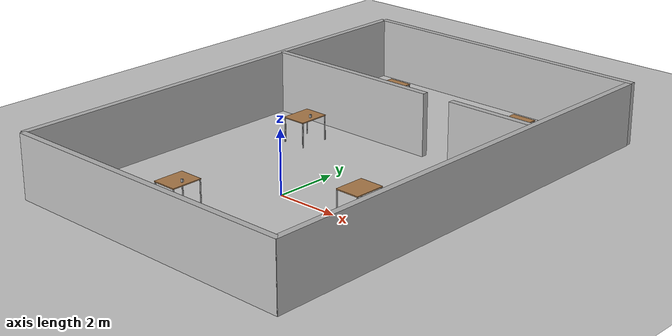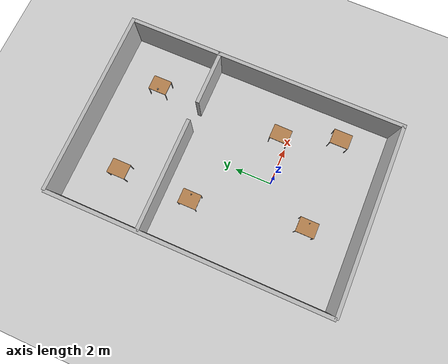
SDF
<sdf version="1.6">
 <world name="default">
  <model name="ground_plane">
   <static>1</static>
   <link name="link">
    <collision name="collision">
     <geometry><plane><normal>0 0 1</normal><size>100 100</size></plane></geometry>
     <surface>
      <contact><collide_bitmask>65535</collide_bitmask></contact>
      <friction><ode><mu>100</mu><mu2>50</mu2></ode></friction>
     </surface>
    </collision>
    <visual name="visual">
     <cast_shadows>0</cast_shadows>
     <geometry><plane><normal>0 0 1</normal><size>100 100</size></plane></geometry>
     <material>
      <script><uri>file://media/materials/scripts/gazebo.material</uri><name>Gazebo/Grey</name></script>
     </material>
    </visual>
   </link>
  </model>
  <model name="wall_1_model">
   <pose>0 -5 1 0 -0 0</pose>
   <static>1</static>
   <link name="wall_1_body">
    <inertial>
     <mass>1</mass>
     <inertia><ixx>1</ixx><ixy>0</ixy><ixz>0</ixz><iyy>1</iyy><iyz>0</iyz><izz>1</izz></inertia>
    </inertial>
    <collision name="collision"><geometry><box><size>10 0.2 2</size></box></geometry></collision>
    <visual name="visual"><geometry><box><size>10 0.2 2</size></box></geometry></visual>
   </link>
  </model>
  <model name="wall_2_model">
   <pose>0 10 1 0 -0 0</pose>
   <static>1</static>
   <link name="wall_2_body">
    <inertial>
     <mass>1</mass>
     <inertia><ixx>1</ixx><ixy>0</ixy><ixz>0</ixz><iyy>1</iyy><iyz>0</iyz><izz>1</izz></inertia>
    </inertial>
    <collision name="collision"><geometry><box><size>10 0.2 2</size></box></geometry></collision>
    <visual name="visual"><geometry><box><size>10 0.2 2</size></box></geometry></visual>
   </link>
  </model>
  <model name="wall_3_model">
   <pose>-5 2.5 1 0 -0 0</pose>
   <static>1</static>
   <link name="wall_3_body">
    <inertial>
     <mass>1</mass>
     <inertia><ixx>1</ixx><ixy>0</ixy><ixz>0</ixz><iyy>1</iyy><iyz>0</iyz><izz>1</izz></inertia>
    </inertial>
    <collision name="collision"><geometry><box><size>0.2 15 2</size></box></geometry></collision>
    <visual name="visual"><geometry><box><size>0.2 15 2</size></box></geometry></visual>
   </link>
  </model>
  <model name="wall_4_model">
   <pose>4.91819 2.40195 1 0 -0 0</pose>
   <static>1</static>
   <link name="wall_4_body">
    <inertial>
     <mass>1</mass>
     <inertia><ixx>1</ixx><ixy>0</ixy><ixz>0</ixz><iyy>1</iyy><iyz>0</iyz><izz>1</izz></inertia>
    </inertial>
    <collision name="collision"><geometry><box><size>0.2 15 2</size></box></geometry></collision>
    <visual name="visual"><geometry><box><size>0.2 15 2</size></box></geometry></visual>
   </link>
  </model>
  <model name="wall_5_model">
   <pose>-1.98503 5.02651 1 0 -0 0</pose>
   <static>1</static>
   <link name="wall_5_body">
    <inertial>
     <mass>1</mass>
     <inertia><ixx>1</ixx><ixy>0</ixy><ixz>0</ixz><iyy>1</iyy><iyz>0</iyz><izz>1</izz></inertia>
    </inertial>
    <collision name="collision"><geometry><box><size>6 0.2 2</size></box></geometry></collision>
    <visual name="visual"><geometry><box><size>6 0.2 2</size></box></geometry></visual>
   </link>
  </model>
  <model name="wall_6_model">
   <pose>3.5 5 1 0 -0 0</pose>
   <static>1</static>
   <link name="wall_6_body">
    <inertial>
     <mass>1</mass>
     <inertia><ixx>1</ixx><ixy>0</ixy><ixz>0</ixz><iyy>1</iyy><iyz>0</iyz><izz>1</izz></inertia>
    </inertial>
    <collision name="collision"><geometry><box><size>3 0.2 2</size></box></geometry></collision>
    <visual name="visual"><geometry><box><size>3 0.2 2</size></box></geometry></visual>
   </link>
  </model>
  <model name="table">
   <static>1</static>
   <link name="link">
    <collision name="surface">
     <pose>0 0 0.8 0 -0 0</pose>
     <geometry><box><size>1 0.8 0.03</size></box></geometry>
    </collision>
    <visual name="visual1">
     <pose>0 0 0.8 0 -0 0</pose>
     <geometry><box><size>1 0.8 0.03</size></box></geometry>
     <material>
      <script><uri>file://media/materials/scripts/gazebo.material</uri><name>Gazebo/Wood</name></script>
     </material>
    </visual>
    <collision name="front_left_leg">
     <pose>0.48 0.38 0.4 0 -0 0</pose>
     <geometry><cylinder><radius>0.02</radius><length>0.8</length></cylinder></geometry>
    </collision>
    <visual name="front_left_leg">
     <pose>0.48 0.38 0.4 0 -0 0</pose>
     <geometry><cylinder><radius>0.02</radius><length>0.8</length></cylinder></geometry>
     <material>
      <script><uri>file://media/materials/scripts/gazebo.material</uri><name>Gazebo/Grey</name></script>
     </material>
    </visual>
    <collision name="front_right_leg">
     <pose>0.48 -0.38 0.4 0 -0 0</pose>
     <geometry><cylinder><radius>0.02</radius><length>0.8</length></cylinder></geometry>
    </collision>
    <visual name="front_right_leg">
     <pose>0.48 -0.38 0.4 0 -0 0</pose>
     <geometry><cylinder><radius>0.02</radius><length>0.8</length></cylinder></geometry>
     <material>
      <script><uri>file://media/materials/scripts/gazebo.material</uri><name>Gazebo/Grey</name></script>
     </material>
    </visual>
    <collision name="back_right_leg">
     <pose>-0.48 -0.38 0.4 0 -0 0</pose>
     <geometry><cylinder><radius>0.02</radius><length>0.8</length></cylinder></geometry>
    </collision>
    <visual name="back_right_leg">
     <pose>-0.48 -0.38 0.4 0 -0 0</pose>
     <geometry><cylinder><radius>0.02</radius><length>0.8</length></cylinder></geometry>
     <material>
      <script><uri>file://media/materials/scripts/gazebo.material</uri><name>Gazebo/Grey</name></script>
     </material>
    </visual>
    <collision name="back_left_leg">
     <pose>-0.48 0.38 0.4 0 -0 0</pose>
     <geometry><cylinder><radius>0.02</radius><length>0.8</length></cylinder></geometry>
    </collision>
    <visual name="back_left_leg">
     <pose>-0.48 0.38 0.4 0 -0 0</pose>
     <geometry><cylinder><radius>0.02</radius><length>0.8</length></cylinder></geometry>
     <material>
      <script><uri>file://media/materials/scripts/gazebo.material</uri><name>Gazebo/Grey</name></script>
     </material>
    </visual>
    <velocity_decay><linear>0</linear><angular>0</angular></velocity_decay>
   </link>
   <pose>3.5 -2.5 0 0 -0 1.5707</pose>
  </model>
  <model name="table_0">
   <static>1</static>
   <link name="link">
    <collision name="surface">
     <pose>0 0 0.8 0 -0 0</pose>
     <geometry><box><size>1 0.8 0.03</size></box></geometry>
    </collision>
    <visual name="visual1">
     <pose>0 0 0.8 0 -0 0</pose>
     <geometry><box><size>1 0.8 0.03</size></box></geometry>
     <material>
      <script><uri>file://media/materials/scripts/gazebo.material</uri><name>Gazebo/Wood</name></script>
     </material>
    </visual>
    <collision name="front_left_leg">
     <pose>0.48 0.38 0.4 0 -0 0</pose>
     <geometry><cylinder><radius>0.02</radius><length>0.8</length></cylinder></geometry>
    </collision>
    <visual name="front_left_leg">
     <pose>0.48 0.38 0.4 0 -0 0</pose>
     <geometry><cylinder><radius>0.02</radius><length>0.8</length></cylinder></geometry>
     <material>
      <script><uri>file://media/materials/scripts/gazebo.material</uri><name>Gazebo/Grey</name></script>
     </material>
    </visual>
    <collision name="front_right_leg">
     <pose>0.48 -0.38 0.4 0 -0 0</pose>
     <geometry><cylinder><radius>0.02</radius><length>0.8</length></cylinder></geometry>
    </collision>
    <visual name="front_right_leg">
     <pose>0.48 -0.38 0.4 0 -0 0</pose>
     <geometry><cylinder><radius>0.02</radius><length>0.8</length></cylinder></geometry>
     <material>
      <script><uri>file://media/materials/scripts/gazebo.material</uri><name>Gazebo/Grey</name></script>
     </material>
    </visual>
    <collision name="back_right_leg">
     <pose>-0.48 -0.38 0.4 0 -0 0</pose>
     <geometry><cylinder><radius>0.02</radius><length>0.8</length></cylinder></geometry>
    </collision>
    <visual name="back_right_leg">
     <pose>-0.48 -0.38 0.4 0 -0 0</pose>
     <geometry><cylinder><radius>0.02</radius><length>0.8</length></cylinder></geometry>
     <material>
      <script><uri>file://media/materials/scripts/gazebo.material</uri><name>Gazebo/Grey</name></script>
     </material>
    </visual>
    <collision name="back_left_leg">
     <pose>-0.48 0.38 0.4 0 -0 0</pose>
     <geometry><cylinder><radius>0.02</radius><length>0.8</length></cylinder></geometry>
    </collision>
    <visual name="back_left_leg">
     <pose>-0.48 0.38 0.4 0 -0 0</pose>
     <geometry><cylinder><radius>0.02</radius><length>0.8</length></cylinder></geometry>
     <material>
      <script><uri>file://media/materials/scripts/gazebo.material</uri><name>Gazebo/Grey</name></script>
     </material>
    </visual>
    <velocity_decay><linear>0</linear><angular>0</angular></velocity_decay>
   </link>
   <pose>-1.5 -2.5 0 0 0 -1.57335</pose>
  </model>
  <model name="table_1">
   <static>1</static>
   <link name="link">
    <collision name="surface">
     <pose>0 0 0.8 0 -0 0</pose>
     <geometry><box><size>1 0.8 0.03</size></box></geometry>
    </collision>
    <visual name="visual1">
     <pose>0 0 0.8 0 -0 0</pose>
     <geometry><box><size>1 0.8 0.03</size></box></geometry>
     <material>
      <script><uri>file://media/materials/scripts/gazebo.material</uri><name>Gazebo/Wood</name></script>
     </material>
    </visual>
    <collision name="front_left_leg">
     <pose>0.48 0.38 0.4 0 -0 0</pose>
     <geometry><cylinder><radius>0.02</radius><length>0.8</length></cylinder></geometry>
    </collision>
    <visual name="front_left_leg">
     <pose>0.48 0.38 0.4 0 -0 0</pose>
     <geometry><cylinder><radius>0.02</radius><length>0.8</length></cylinder></geometry>
     <material>
      <script><uri>file://media/materials/scripts/gazebo.material</uri><name>Gazebo/Grey</name></script>
     </material>
    </visual>
    <collision name="front_right_leg">
     <pose>0.48 -0.38 0.4 0 -0 0</pose>
     <geometry><cylinder><radius>0.02</radius><length>0.8</length></cylinder></geometry>
    </collision>
    <visual name="front_right_leg">
     <pose>0.48 -0.38 0.4 0 -0 0</pose>
     <geometry><cylinder><radius>0.02</radius><length>0.8</length></cylinder></geometry>
     <material>
      <script><uri>file://media/materials/scripts/gazebo.material</uri><name>Gazebo/Grey</name></script>
     </material>
    </visual>
    <collision name="back_right_leg">
     <pose>-0.48 -0.38 0.4 0 -0 0</pose>
     <geometry><cylinder><radius>0.02</radius><length>0.8</length></cylinder></geometry>
    </collision>
    <visual name="back_right_leg">
     <pose>-0.48 -0.38 0.4 0 -0 0</pose>
     <geometry><cylinder><radius>0.02</radius><length>0.8</length></cylinder></geometry>
     <material>
      <script><uri>file://media/materials/scripts/gazebo.material</uri><name>Gazebo/Grey</name></script>
     </material>
    </visual>
    <collision name="back_left_leg">
     <pose>-0.48 0.38 0.4 0 -0 0</pose>
     <geometry><cylinder><radius>0.02</radius><length>0.8</length></cylinder></geometry>
    </collision>
    <visual name="back_left_leg">
     <pose>-0.48 0.38 0.4 0 -0 0</pose>
     <geometry><cylinder><radius>0.02</radius><length>0.8</length></cylinder></geometry>
     <material>
      <script><uri>file://media/materials/scripts/gazebo.material</uri><name>Gazebo/Grey</name></script>
     </material>
    </visual>
    <velocity_decay><linear>0</linear><angular>0</angular></velocity_decay>
   </link>
   <pose>2.5 0.5 0 0 0 -1.58621</pose>
  </model>
  <model name="table_3">
   <static>1</static>
   <link name="link">
    <collision name="surface">
     <pose>0 0 0.8 0 -0 0</pose>
     <geometry><box><size>1 0.8 0.03</size></box></geometry>
    </collision>
    <visual name="visual1">
     <pose>0 0 0.8 0 -0 0</pose>
     <geometry><box><size>1 0.8 0.03</size></box></geometry>
     <material>
      <script><uri>file://media/materials/scripts/gazebo.material</uri><name>Gazebo/Wood</name></script>
     </material>
    </visual>
    <collision name="front_left_leg">
     <pose>0.48 0.38 0.4 0 -0 0</pose>
     <geometry><cylinder><radius>0.02</radius><length>0.8</length></cylinder></geometry>
    </collision>
    <visual name="front_left_leg">
     <pose>0.48 0.38 0.4 0 -0 0</pose>
     <geometry><cylinder><radius>0.02</radius><length>0.8</length></cylinder></geometry>
     <material>
      <script><uri>file://media/materials/scripts/gazebo.material</uri><name>Gazebo/Grey</name></script>
     </material>
    </visual>
    <collision name="front_right_leg">
     <pose>0.48 -0.38 0.4 0 -0 0</pose>
     <geometry><cylinder><radius>0.02</radius><length>0.8</length></cylinder></geometry>
    </collision>
    <visual name="front_right_leg">
     <pose>0.48 -0.38 0.4 0 -0 0</pose>
     <geometry><cylinder><radius>0.02</radius><length>0.8</length></cylinder></geometry>
     <material>
      <script><uri>file://media/materials/scripts/gazebo.material</uri><name>Gazebo/Grey</name></script>
     </material>
    </visual>
    <collision name="back_right_leg">
     <pose>-0.48 -0.38 0.4 0 -0 0</pose>
     <geometry><cylinder><radius>0.02</radius><length>0.8</length></cylinder></geometry>
    </collision>
    <visual name="back_right_leg">
     <pose>-0.48 -0.38 0.4 0 -0 0</pose>
     <geometry><cylinder><radius>0.02</radius><length>0.8</length></cylinder></geometry>
     <material>
      <script><uri>file://media/materials/scripts/gazebo.material</uri><name>Gazebo/Grey</name></script>
     </material>
    </visual>
    <collision name="back_left_leg">
     <pose>-0.48 0.38 0.4 0 -0 0</pose>
     <geometry><cylinder><radius>0.02</radius><length>0.8</length></cylinder></geometry>
    </collision>
    <visual name="back_left_leg">
     <pose>-0.48 0.38 0.4 0 -0 0</pose>
     <geometry><cylinder><radius>0.02</radius><length>0.8</length></cylinder></geometry>
     <material>
      <script><uri>file://media/materials/scripts/gazebo.material</uri><name>Gazebo/Grey</name></script>
     </material>
    </visual>
    <velocity_decay><linear>0</linear><angular>0</angular></velocity_decay>
   </link>
   <pose>-2.5 7.5 0 0 -0 1.5707</pose>
  </model>
  <model name="table_4">
   <static>1</static>
   <link name="link">
    <collision name="surface">
     <pose>0 0 0.8 0 -0 0</pose>
     <geometry><box><size>1 0.8 0.03</size></box></geometry>
    </collision>
    <visual name="visual1">
     <pose>0 0 0.8 0 -0 0</pose>
     <geometry><box><size>1 0.8 0.03</size></box></geometry>
     <material>
      <script><uri>file://media/materials/scripts/gazebo.material</uri><name>Gazebo/Wood</name></script>
     </material>
    </visual>
    <collision name="front_left_leg">
     <pose>0.48 0.38 0.4 0 -0 0</pose>
     <geometry><cylinder><radius>0.02</radius><length>0.8</length></cylinder></geometry>
    </collision>
    <visual name="front_left_leg">
     <pose>0.48 0.38 0.4 0 -0 0</pose>
     <geometry><cylinder><radius>0.02</radius><length>0.8</length></cylinder></geometry>
     <material>
      <script><uri>file://media/materials/scripts/gazebo.material</uri><name>Gazebo/Grey</name></script>
     </material>
    </visual>
    <collision name="front_right_leg">
     <pose>0.48 -0.38 0.4 0 -0 0</pose>
     <geometry><cylinder><radius>0.02</radius><length>0.8</length></cylinder></geometry>
    </collision>
    <visual name="front_right_leg">
     <pose>0.48 -0.38 0.4 0 -0 0</pose>
     <geometry><cylinder><radius>0.02</radius><length>0.8</length></cylinder></geometry>
     <material>
      <script><uri>file://media/materials/scripts/gazebo.material</uri><name>Gazebo/Grey</name></script>
     </material>
    </visual>
    <collision name="back_right_leg">
     <pose>-0.48 -0.38 0.4 0 -0 0</pose>
     <geometry><cylinder><radius>0.02</radius><length>0.8</length></cylinder></geometry>
    </collision>
    <visual name="back_right_leg">
     <pose>-0.48 -0.38 0.4 0 -0 0</pose>
     <geometry><cylinder><radius>0.02</radius><length>0.8</length></cylinder></geometry>
     <material>
      <script><uri>file://media/materials/scripts/gazebo.material</uri><name>Gazebo/Grey</name></script>
     </material>
    </visual>
    <collision name="back_left_leg">
     <pose>-0.48 0.38 0.4 0 -0 0</pose>
     <geometry><cylinder><radius>0.02</radius><length>0.8</length></cylinder></geometry>
    </collision>
    <visual name="back_left_leg">
     <pose>-0.48 0.38 0.4 0 -0 0</pose>
     <geometry><cylinder><radius>0.02</radius><length>0.8</length></cylinder></geometry>
     <material>
      <script><uri>file://media/materials/scripts/gazebo.material</uri><name>Gazebo/Grey</name></script>
     </material>
    </visual>
    <velocity_decay><linear>0</linear><angular>0</angular></velocity_decay>
   </link>
   <pose>-2.5 3.5 0 0 -0 1.5707</pose>
  </model>
  <model name="table_2">
   <static>1</static>
   <link name="link">
    <collision name="surface">
     <pose>0 0 0.8 0 -0 0</pose>
     <geometry><box><size>1 0.8 0.03</size></box></geometry>
    </collision>
    <visual name="visual1">
     <pose>0 0 0.8 0 -0 0</pose>
     <geometry><box><size>1 0.8 0.03</size></box></geometry>
     <material>
      <script><uri>file://media/materials/scripts/gazebo.material</uri><name>Gazebo/Wood</name></script>
     </material>
    </visual>
    <collision name="front_left_leg">
     <pose>0.48 0.38 0.4 0 -0 0</pose>
     <geometry><cylinder><radius>0.02</radius><length>0.8</length></cylinder></geometry>
    </collision>
    <visual name="front_left_leg">
     <pose>0.48 0.38 0.4 0 -0 0</pose>
     <geometry><cylinder><radius>0.02</radius><length>0.8</length></cylinder></geometry>
     <material>
      <script><uri>file://media/materials/scripts/gazebo.material</uri><name>Gazebo/Grey</name></script>
     </material>
    </visual>
    <collision name="front_right_leg">
     <pose>0.48 -0.38 0.4 0 -0 0</pose>
     <geometry><cylinder><radius>0.02</radius><length>0.8</length></cylinder></geometry>
    </collision>
    <visual name="front_right_leg">
     <pose>0.48 -0.38 0.4 0 -0 0</pose>
     <geometry><cylinder><radius>0.02</radius><length>0.8</length></cylinder></geometry>
     <material>
      <script><uri>file://media/materials/scripts/gazebo.material</uri><name>Gazebo/Grey</name></script>
     </material>
    </visual>
    <collision name="back_right_leg">
     <pose>-0.48 -0.38 0.4 0 -0 0</pose>
     <geometry><cylinder><radius>0.02</radius><length>0.8</length></cylinder></geometry>
    </collision>
    <visual name="back_right_leg">
     <pose>-0.48 -0.38 0.4 0 -0 0</pose>
     <geometry><cylinder><radius>0.02</radius><length>0.8</length></cylinder></geometry>
     <material>
      <script><uri>file://media/materials/scripts/gazebo.material</uri><name>Gazebo/Grey</name></script>
     </material>
    </visual>
    <collision name="back_left_leg">
     <pose>-0.48 0.38 0.4 0 -0 0</pose>
     <geometry><cylinder><radius>0.02</radius><length>0.8</length></cylinder></geometry>
    </collision>
    <visual name="back_left_leg">
     <pose>-0.48 0.38 0.4 0 -0 0</pose>
     <geometry><cylinder><radius>0.02</radius><length>0.8</length></cylinder></geometry>
     <material>
      <script><uri>file://media/materials/scripts/gazebo.material</uri><name>Gazebo/Grey</name></script>
     </material>
    </visual>
    <velocity_decay><linear>0</linear><angular>0</angular></velocity_decay>
   </link>
   <pose>2.5 7.5 0 0 -0 1.5707</pose>
  </model>
  <model name="aruco_cube">
   <static>0</static>
   <link name="link">
    <inertial>
     <mass>0.05</mass>
     <inertia>
      <ixx>5.2083e-05</ixx>
      <ixy>0</ixy>
      <ixz>0</ixz>
      <iyy>5.2083e-05</iyy>
      <iyz>0</iyz>
      <izz>2.0833e-05</izz>
     </inertia>
    </inertial>
    <collision name="colision">
     <geometry><box><size>0.05 0.05 0.1</size></box></geometry>
     <surface>
      <friction><ode><mu>30</mu><mu2>30</mu2><fdir1>0 0 0</fdir1></ode></friction>
      <contact><ode><kp>1e+06</kp><kd>100</kd><min_depth>0.0025</min_depth><max_vel>1</max_vel></ode></contact>
     </surface>
    </collision>
    <visual name="visual1">
     <geometry>
      <mesh><uri>model://aruco_cube_blue/meshes/aruco_cube_5cm.dae</uri><scale>1 1 2</scale></mesh>
     </geometry>
    </visual>
    <velocity_decay><linear>0</linear><angular>0</angular></velocity_decay>
   </link>
   <pose>-2.2688 3.50327 0.863334 -0.009033 0.002877 -1e-05</pose>
  </model>
  <model name="aruco_cube_0">
   <static>0</static>
   <link name="link">
    <inertial>
     <mass>0.05</mass>
     <inertia>
      <ixx>5.2083e-05</ixx>
      <ixy>0</ixy>
      <ixz>0</ixz>
      <iyy>5.2083e-05</iyy>
      <iyz>0</iyz>
      <izz>2.0833e-05</izz>
     </inertia>
    </inertial>
    <collision name="colision">
     <geometry><box><size>0.05 0.05 0.1</size></box></geometry>
     <surface>
      <friction><ode><mu>30</mu><mu2>30</mu2><fdir1>0 0 0</fdir1></ode></friction>
      <contact><ode><kp>1e+06</kp><kd>100</kd><min_depth>0.0025</min_depth><max_vel>1</max_vel></ode></contact>
     </surface>
    </collision>
    <visual name="visual1">
     <geometry>
      <mesh><uri>model://aruco_cube_green/meshes/aruco_cube_5cm.dae</uri><scale>1 1 2</scale></mesh>
     </geometry>
    </visual>
    <velocity_decay><linear>0</linear><angular>0</angular></velocity_decay>
   </link>
   <pose>-1.2735 -2.53071 0.8625 0 -0 0</pose>
  </model>
  <model name="aruco_cube_1">
   <static>0</static>
   <link name="link">
    <inertial>
     <mass>0.05</mass>
     <inertia>
      <ixx>5.2083e-05</ixx>
      <ixy>0</ixy>
      <ixz>0</ixz>
      <iyy>5.2083e-05</iyy>
      <iyz>0</iyz>
      <izz>2.0833e-05</izz>
     </inertia>
    </inertial>
    <collision name="colision">
     <geometry><box><size>0.05 0.05 0.1</size></box></geometry>
     <surface>
      <friction><ode><mu>30</mu><mu2>30</mu2><fdir1>0 0 0</fdir1></ode></friction>
      <contact><ode><kp>1e+06</kp><kd>100</kd><min_depth>0.0025</min_depth><max_vel>1</max_vel></ode></contact>
     </surface>
    </collision>
    <visual name="visual1">
     <geometry>
      <mesh><uri>model://aruco_cube_red/meshes/aruco_cube_5cm.dae</uri><scale>1 1 2</scale></mesh>
     </geometry>
    </visual>
    <velocity_decay><linear>0</linear><angular>0</angular></velocity_decay>
   </link>
   <pose>2.22806 7.50045 0.864168 -0.003253 0.001033 -0.000264</pose>
  </model>
 </world>
</sdf>
